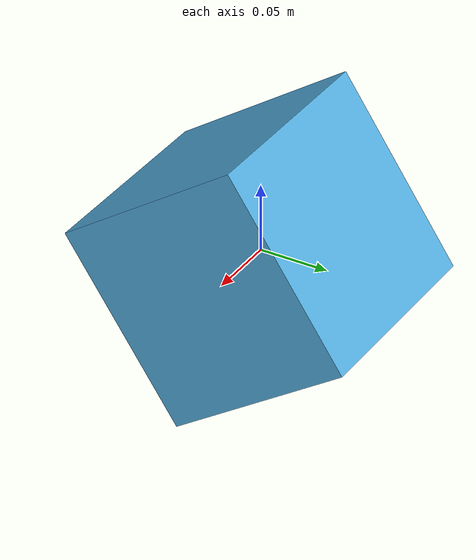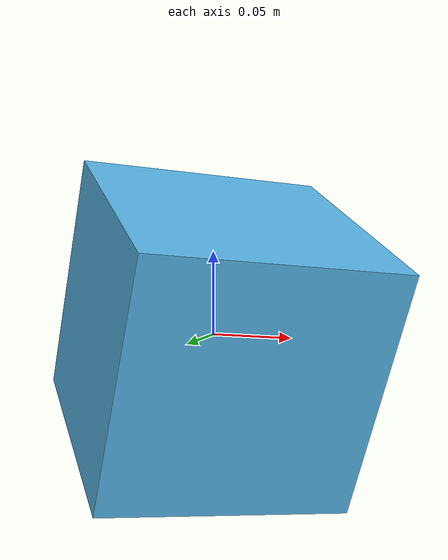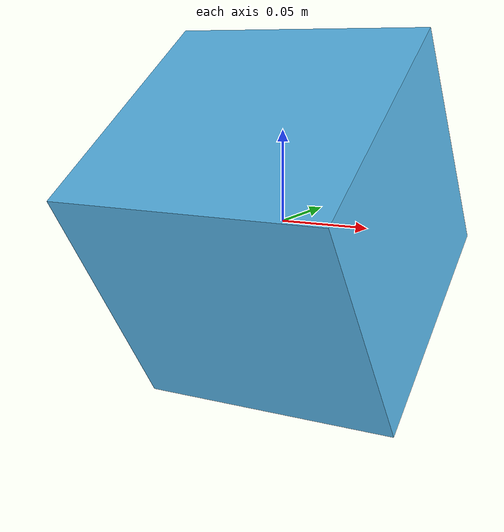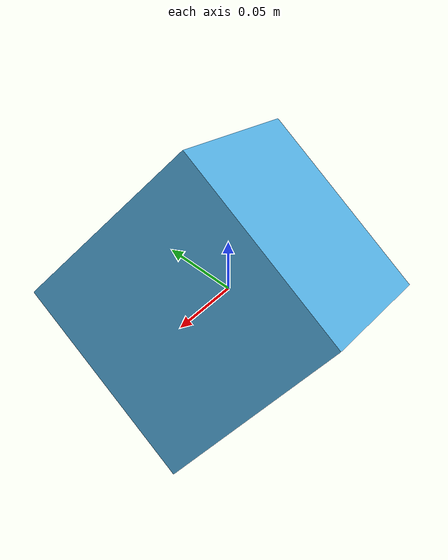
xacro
<robot name="camera2">
    <link name="world"/>
    <joint name="world_joint" type="fixed">
        <origin xyz="0.0 0 0" rpy="0 0.592675 -1.5707"/>   <!--남쪽-->   <!--수식 안먹힘-->
        <!--r: roll(왼쪽으로 기움), p(pitch) y: yaw(좌우), 양수일 수록 밑을 내려봄, 음수면 왼쪽-->
        <parent link="world"/>
        <child link="cctv1"/>
    </joint>
    <link name="cctv1">
        <visual>
            <origin xyz="0 0 0" rpy="0 0 0"/>
            <geometry>
                <box size="0.15 0.15 0.15"/>
            </geometry>
        </visual>
        <inertial>
            <mass value="1e-5"/>
            <origin xyz="0 0 0" rpy="0 0 0"/>
            <inertia ixx="1e-6" ixy="0" ixz="0" iyy="1e-6" iyz="0" izz="1e-6"/>
        </inertial>
    </link>
    <gazebo reference="cctv1">
        <static>true</static>
        <turnGravityOff>true</turnGravityOff>
        <sensor type="camera" name="cctv1">
            <update_rate>30.0</update_rate>
            <camera name="head">
                <horizontal_fov>1.3962634</horizontal_fov>
                <image>
                    <width>512</width>
                    <height>512</height>
                    <format>R8G8B8</format>
                </image>
                <clip>
                    <near>0.02</near>
                    <far>300</far>
                </clip>
                <noise>
                    <type>gaussian</type>
                    <mean>0.0</mean>
                    <stddev>0.0</stddev>
                </noise>
            </camera>
            <plugin name="camera_controller" filename="libgazebo_ros_camera.so">
                <alwaysOn>true</alwaysOn>
                <updateRate>0.0</updateRate>
                <cameraName>cctv1</cameraName>
                <imageTopicName>/cctv1/image_raw</imageTopicName>
                <cameraInfoTopicName>/cctv1/camera_info</cameraInfoTopicName>
                <frameName>cctv1</frameName>
                <hackBaseline>0.07</hackBaseline>
                <distortionK1>0.0</distortionK1>
                <distortionK2>0.0</distortionK2>
                <distortionK3>0.0</distortionK3>
                <distortionT1>0.0</distortionT1>
                <distortionT2>0.0</distortionT2>
            </plugin>
        </sensor>
    </gazebo>
</robot>
